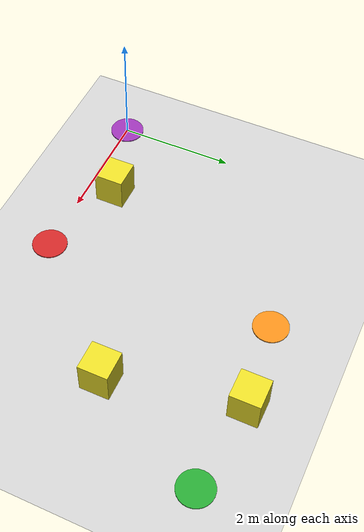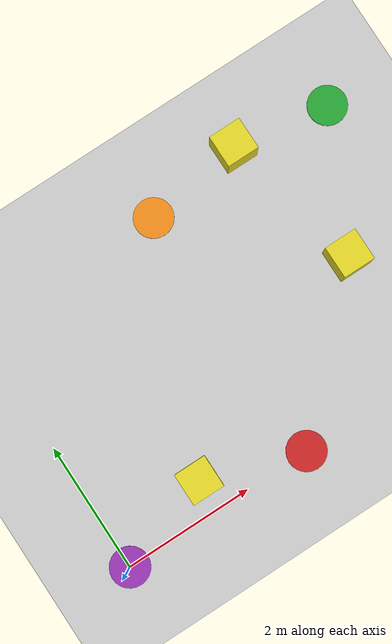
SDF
<?xml version="1.0" ?>
<sdf version='1.7'>
  <world name='default'>
    <light name='sun' type='directional'>
      <cast_shadows>1</cast_shadows>
      <pose>0 0 10 0 -0 0</pose>
      <diffuse>0.8 0.8 0.8 1</diffuse>
      <specular>0.2 0.2 0.2 1</specular>
      <attenuation>
        <range>1000</range>
        <constant>0.9</constant>
        <linear>0.01</linear>
        <quadratic>0.001</quadratic>
      </attenuation>
      <direction>-0.5 0.1 -0.9</direction>
    </light>

    <model name='ground_plane'>
      <static>1</static>
      <link name='link'>
        <collision name='collision'>
          <geometry>
            <plane>
              <normal>0 0 1</normal>
              <size>100 100</size>
            </plane>
          </geometry>
          <surface>
            <friction>
              <ode>
                <mu>100</mu>
                <mu2>50</mu2>
              </ode>
            </friction>
            <contact>
              <ode/>
            </contact>
          </surface>
        </collision>
        <visual name='visual'>
          <cast_shadows>0</cast_shadows>
          <geometry>
            <plane>
              <normal>0 0 1</normal>
              <size>100 100</size>
            </plane>
          </geometry>
          <material>
            <script>
              <uri>file://media/materials/scripts/gazebo.material</uri>
              <name>Gazebo/Grey</name>
            </script>
          </material>
        </visual>
      </link>
    </model>

    <!-- Waypoint markers (visual only, no collision) -->
    <model name='waypoint_1'>
      <static>1</static>
      <pose>3 0 0.01 0 0 0</pose>
      <link name='link'>
        <visual name='visual'>
          <geometry>
            <cylinder>
              <radius>0.3</radius>
              <length>0.02</length>
            </cylinder>
          </geometry>
          <material>
            <script>
              <uri>file://media/materials/scripts/gazebo.material</uri>
              <name>Gazebo/Red</name>
            </script>
          </material>
        </visual>
      </link>
    </model>

    <model name='waypoint_2'>
      <static>1</static>
      <pose>6 4 0.01 0 0 0</pose>
      <link name='link'>
        <visual name='visual'>
          <geometry>
            <cylinder>
              <radius>0.3</radius>
              <length>0.02</length>
            </cylinder>
          </geometry>
          <material>
            <script>
              <uri>file://media/materials/scripts/gazebo.material</uri>
              <name>Gazebo/Green</name>
            </script>
          </material>
        </visual>
      </link>
    </model>

    <model name='waypoint_3'>
      <static>1</static>
      <pose>3 4 0.01 0 0 0</pose>
      <link name='link'>
        <visual name='visual'>
          <geometry>
            <cylinder>
              <radius>0.3</radius>
              <length>0.02</length>
            </cylinder>
          </geometry>
          <material>
            <script>
              <uri>file://media/materials/scripts/gazebo.material</uri>
              <name>Gazebo/Orange</name>
            </script>
          </material>
        </visual>
      </link>
    </model>

    <model name='waypoint_4'>
      <static>1</static>
      <pose>0 0 0.01 0 0 0</pose>
      <link name='link'>
        <visual name='visual'>
          <geometry>
            <cylinder>
              <radius>0.3</radius>
              <length>0.02</length>
            </cylinder>
          </geometry>
          <material>
            <script>
              <uri>file://media/materials/scripts/gazebo.material</uri>
              <name>Gazebo/Purple</name>
            </script>
          </material>
        </visual>
      </link>
    </model>

    <!-- Static obstacles placed between waypoints -->
    <model name='obstacle_1'>
      <static>1</static>
      <pose>1.5 0.5 0.3 0 0 0</pose>
      <link name='link'>
        <collision name='collision'>
          <geometry><box><size>0.5 0.5 0.6</size></box></geometry>
        </collision>
        <visual name='visual'>
          <geometry><box><size>0.5 0.5 0.6</size></box></geometry>
          <material>
            <script>
              <uri>file://media/materials/scripts/gazebo.material</uri>
              <name>Gazebo/Yellow</name>
            </script>
          </material>
        </visual>
      </link>
    </model>

    <model name='obstacle_2'>
      <static>1</static>
      <pose>5.0 2.0 0.3 0 0 0</pose>
      <link name='link'>
        <collision name='collision'>
          <geometry><box><size>0.5 0.5 0.6</size></box></geometry>
        </collision>
        <visual name='visual'>
          <geometry><box><size>0.5 0.5 0.6</size></box></geometry>
          <material>
            <script>
              <uri>file://media/materials/scripts/gazebo.material</uri>
              <name>Gazebo/Yellow</name>
            </script>
          </material>
        </visual>
      </link>
    </model>

    <model name='obstacle_3'>
      <static>1</static>
      <pose>4.5 4.2 0.3 0 0 0</pose>
      <link name='link'>
        <collision name='collision'>
          <geometry><box><size>0.5 0.5 0.6</size></box></geometry>
        </collision>
        <visual name='visual'>
          <geometry><box><size>0.5 0.5 0.6</size></box></geometry>
          <material>
            <script>
              <uri>file://media/materials/scripts/gazebo.material</uri>
              <name>Gazebo/Yellow</name>
            </script>
          </material>
        </visual>
      </link>
    </model>

    <gravity>0 0 -9.8</gravity>
    <magnetic_field>6e-06 2.3e-05 -4.2e-05</magnetic_field>
    <atmosphere type='adiabatic'/>
    <physics type='ode'>
      <max_step_size>0.001</max_step_size>
      <real_time_factor>1</real_time_factor>
      <real_time_update_rate>1000</real_time_update_rate>
    </physics>
    <scene>
      <ambient>0.4 0.4 0.4 1</ambient>
      <background>0.7 0.7 0.7 1</background>
      <shadows>1</shadows>
    </scene>
  </world>
</sdf>
